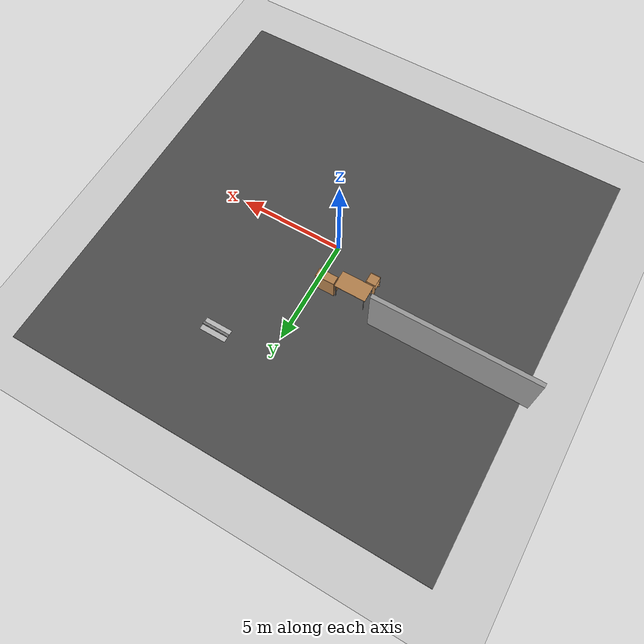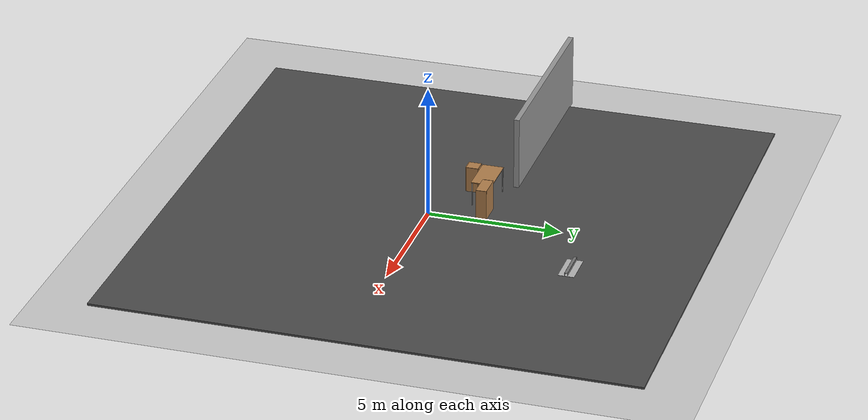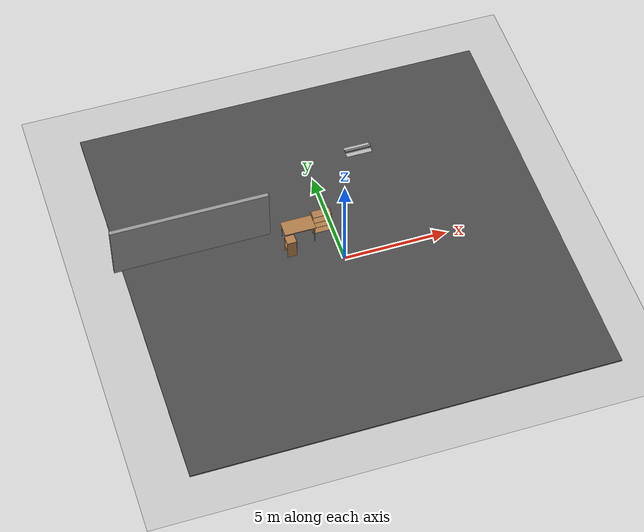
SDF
<sdf version="1.6">
 <world name="default">
  <model name="ground_plane">
   <static>1</static>
   <link name="link">
    <collision name="collision">
     <geometry><plane><normal>0 0 1</normal><size>100 100</size></plane></geometry>
     <surface>
      <contact><collide_bitmask>65535</collide_bitmask></contact>
      <friction><ode><mu>100</mu><mu2>50</mu2></ode></friction>
     </surface>
    </collision>
    <visual name="visual">
     <cast_shadows>0</cast_shadows>
     <geometry><plane><normal>0 0 1</normal><size>100 100</size></plane></geometry>
     <material>
      <script><uri>file://media/materials/scripts/gazebo.material</uri><name>Gazebo/Grey</name></script>
     </material>
    </visual>
   </link>
  </model>
  <model name="table">
   <static>1</static>
   <link name="link">
    <collision name="surface">
     <pose>0 0 1 0 -0 0</pose>
     <geometry><box><size>1.5 0.8 0.03</size></box></geometry>
     <surface><friction><ode><mu>0.6</mu><mu2>0.6</mu2></ode></friction></surface>
    </collision>
    <visual name="visual1">
     <pose>0 0 1 0 -0 0</pose>
     <geometry><box><size>1.5 0.8 0.03</size></box></geometry>
     <material>
      <script><uri>file://media/materials/scripts/gazebo.material</uri><name>Gazebo/Wood</name></script>
     </material>
    </visual>
    <collision name="front_left_leg">
     <pose>0.68 0.38 0.5 0 -0 0</pose>
     <geometry><cylinder><radius>0.02</radius><length>1</length></cylinder></geometry>
    </collision>
    <visual name="front_left_leg">
     <pose>0.68 0.38 0.5 0 -0 0</pose>
     <geometry><cylinder><radius>0.02</radius><length>1</length></cylinder></geometry>
     <material>
      <script><uri>file://media/materials/scripts/gazebo.material</uri><name>Gazebo/Grey</name></script>
     </material>
    </visual>
    <collision name="front_right_leg">
     <pose>0.68 -0.38 0.5 0 -0 0</pose>
     <geometry><cylinder><radius>0.02</radius><length>1</length></cylinder></geometry>
    </collision>
    <visual name="front_right_leg">
     <pose>0.68 -0.38 0.5 0 -0 0</pose>
     <geometry><cylinder><radius>0.02</radius><length>1</length></cylinder></geometry>
     <material>
      <script><uri>file://media/materials/scripts/gazebo.material</uri><name>Gazebo/Grey</name></script>
     </material>
    </visual>
    <collision name="back_right_leg">
     <pose>-0.68 -0.38 0.5 0 -0 0</pose>
     <geometry><cylinder><radius>0.02</radius><length>1</length></cylinder></geometry>
    </collision>
    <visual name="back_right_leg">
     <pose>-0.68 -0.38 0.5 0 -0 0</pose>
     <geometry><cylinder><radius>0.02</radius><length>1</length></cylinder></geometry>
     <material>
      <script><uri>file://media/materials/scripts/gazebo.material</uri><name>Gazebo/Grey</name></script>
     </material>
    </visual>
    <collision name="back_left_leg">
     <pose>-0.68 0.38 0.5 0 -0 0</pose>
     <geometry><cylinder><radius>0.02</radius><length>1</length></cylinder></geometry>
    </collision>
    <visual name="back_left_leg">
     <pose>-0.68 0.38 0.5 0 -0 0</pose>
     <geometry><cylinder><radius>0.02</radius><length>1</length></cylinder></geometry>
     <material>
      <script><uri>file://media/materials/scripts/gazebo.material</uri><name>Gazebo/Grey</name></script>
     </material>
    </visual>
   </link>
   <pose>-1.7186 1.73602 0 0 -0 0</pose>
  </model>
  <model name="asphalt_plane">
   <static>1</static>
   <link name="link">
    <collision name="collision"><geometry><box><size>20 20 0.1</size></box></geometry></collision>
    <visual name="visual">
     <cast_shadows>0</cast_shadows>
     <geometry><box><size>20 20 0.1</size></box></geometry>
     <material>
      <script>
       <uri>model://asphalt_plane/materials/scripts</uri>
       <uri>model://asphalt_plane/materials/textures</uri>
       <name>vrc/asphalt</name>
      </script>
     </material>
    </visual>
   </link>
   <pose>-0.009783 0.654292 0 0 -0 0</pose>
  </model>
  <model name="bookshelf">
   <static>1</static>
   <link name="link">
    <inertial><mass>1</mass></inertial>
    <collision name="back">
     <pose>0 0.005 0.6 0 -0 0</pose>
     <geometry><box><size>0.9 0.01 1.2</size></box></geometry>
    </collision>
    <visual name="visual1">
     <pose>0 0.005 0.6 0 -0 0</pose>
     <geometry><box><size>0.9 0.01 1.2</size></box></geometry>
     <material>
      <script><uri>file://media/materials/scripts/gazebo.material</uri><name>Gazebo/Wood</name></script>
     </material>
    </visual>
    <collision name="left_side">
     <pose>0.45 -0.195 0.6 0 -0 0</pose>
     <geometry><box><size>0.02 0.4 1.2</size></box></geometry>
    </collision>
    <visual name="visual2">
     <pose>0.45 -0.195 0.6 0 -0 0</pose>
     <geometry><box><size>0.02 0.4 1.2</size></box></geometry>
     <material>
      <script><uri>file://media/materials/scripts/gazebo.material</uri><name>Gazebo/Wood</name></script>
     </material>
    </visual>
    <collision name="right_side">
     <pose>-0.45 -0.195 0.6 0 -0 0</pose>
     <geometry><box><size>0.02 0.4 1.2</size></box></geometry>
    </collision>
    <visual name="visual3">
     <pose>-0.45 -0.195 0.6 0 -0 0</pose>
     <geometry><box><size>0.02 0.4 1.2</size></box></geometry>
     <material>
      <script><uri>file://media/materials/scripts/gazebo.material</uri><name>Gazebo/Wood</name></script>
     </material>
    </visual>
    <collision name="bottom">
     <pose>0 -0.195 0.03 0 -0 0</pose>
     <geometry><box><size>0.88 0.4 0.06</size></box></geometry>
    </collision>
    <visual name="visual4">
     <pose>0 -0.195 0.03 0 -0 0</pose>
     <geometry><box><size>0.88 0.4 0.06</size></box></geometry>
     <material>
      <script><uri>file://media/materials/scripts/gazebo.material</uri><name>Gazebo/Wood</name></script>
     </material>
    </visual>
    <collision name="top">
     <pose>0 -0.195 1.19 0 -0 0</pose>
     <geometry><box><size>0.88 0.4 0.02</size></box></geometry>
    </collision>
    <visual name="visual5">
     <pose>0 -0.195 1.19 0 -0 0</pose>
     <geometry><box><size>0.88 0.4 0.02</size></box></geometry>
     <material>
      <script><uri>file://media/materials/scripts/gazebo.material</uri><name>Gazebo/Wood</name></script>
     </material>
    </visual>
    <collision name="low_shelf">
     <pose>0 -0.195 0.43 0 -0 0</pose>
     <geometry><box><size>0.88 0.4 0.02</size></box></geometry>
    </collision>
    <visual name="visual6">
     <pose>0 -0.195 0.43 0 -0 0</pose>
     <geometry><box><size>0.88 0.4 0.02</size></box></geometry>
     <material>
      <script><uri>file://media/materials/scripts/gazebo.material</uri><name>Gazebo/Wood</name></script>
     </material>
    </visual>
    <collision name="high_shelf">
     <pose>0 -0.195 0.8 0 -0 0</pose>
     <geometry><box><size>0.88 0.4 0.02</size></box></geometry>
    </collision>
    <visual name="visual7">
     <pose>0 -0.195 0.8 0 -0 0</pose>
     <geometry><box><size>0.88 0.4 0.02</size></box></geometry>
     <material>
      <script><uri>file://media/materials/scripts/gazebo.material</uri><name>Gazebo/Wood</name></script>
     </material>
    </visual>
   </link>
   <pose>-0.520851 2.1736 0 0 -0 0</pose>
  </model>
  <model name="grey_wall">
   <static>1</static>
   <link name="link">
    <pose>0 0 1.4 0 -0 0</pose>
    <collision name="collision"><geometry><box><size>7.5 0.2 2.8</size></box></geometry></collision>
    <visual name="visual">
     <cast_shadows>0</cast_shadows>
     <geometry><box><size>7.5 0.2 2.8</size></box></geometry>
     <material>
      <script>
       <uri>model://grey_wall/materials/scripts</uri>
       <uri>model://grey_wall/materials/textures</uri>
       <name>vrc/grey_wall</name>
      </script>
     </material>
    </visual>
   </link>
   <pose>-6.62884 2.50048 0 0 -0 0</pose>
  </model>
  <model name="frc2016_rockwall">
   <static>1</static>
   <link name="link">
    <inertial>
     <mass>10</mass>
     <pose>0 0 0.08974 0 -0 0</pose>
     <inertia><ixx>0.327091</ixx><ixy>0</ixy><ixz>0</ixz><iyy>1.37417</iyy><iyz>0</iyz><izz>1.64109</izz></inertia>
    </inertial>
    <visual name="platform">
     <pose>0 0 0.06432 0 -0 0</pose>
     <geometry><box><size>1.27 0.5969 0.003175</size></box></geometry>
    </visual>
    <collision name="platform">
     <pose>0 0 0.06432 0 -0 0</pose>
     <geometry><box><size>1.27 0.5969 0.003175</size></box></geometry>
    </collision>
    <visual name="up1">
     <pose>0 0.05166 0.12537 0 -0 0</pose>
     <geometry><box><size>1.27 0.00462 0.11892</size></box></geometry>
     <material><ambient>0.46 0.46 0.46 1</ambient><diffuse>0.46 0.46 0.46 1</diffuse></material>
    </visual>
    <collision name="up1">
     <pose>0 0.05166 0.12537 0 -0 0</pose>
     <geometry><box><size>1.27 0.00462 0.11892</size></box></geometry>
    </collision>
    <visual name="up2">
     <pose>0 -0.05801 0.12537 0 -0 0</pose>
     <geometry><box><size>1.27 0.00462 0.11892</size></box></geometry>
     <material><ambient>0.46 0.46 0.46 1</ambient><diffuse>0.46 0.46 0.46 1</diffuse></material>
    </visual>
    <collision name="up2">
     <pose>0 -0.05801 0.12537 0 -0 0</pose>
     <geometry><box><size>1.27 0.00462 0.11892</size></box></geometry>
    </collision>
    <visual name="top">
     <pose>0 -0.00249 0.18252 0 -0 0</pose>
     <geometry><box><size>1.27 0.1143 0.00462</size></box></geometry>
     <material><ambient>0.46 0.46 0.46 1</ambient><diffuse>0.46 0.46 0.46 1</diffuse></material>
    </visual>
    <collision name="top">
     <pose>0 -0.00249 0.18252 0 -0 0</pose>
     <geometry><box><size>1.27 0.1143 0.00462</size></box></geometry>
    </collision>
   </link>
   <pose>2.61671 6.08473 0 0 -0 0</pose>
  </model>
  <model name="cabinet">
   <static>1</static>
   <link name="cabinet_bottom_plate">
    <inertial>
     <pose>0 0 -1 0 -0 0</pose>
     <inertia><ixx>2.05</ixx><ixy>0</ixy><ixz>0</ixz><iyy>2.05</iyy><iyz>0</iyz><izz>2.05</izz></inertia>
     <mass>25</mass>
    </inertial>
    <collision name="cabinet_bottom_plate_geom">
     <pose>0 0 0.01 0 -0 0</pose>
     <geometry><box><size>0.45 0.45 0.02</size></box></geometry>
    </collision>
    <visual name="cabinet_bottom_plate_geom_visual">
     <pose>0 0 0.01 0 -0 0</pose>
     <geometry><box><size>0.45 0.45 0.02</size></box></geometry>
     <material>
      <script><uri>file://media/materials/scripts/gazebo.material</uri><name>Gazebo/Wood</name></script>
     </material>
    </visual>
    <collision name="cabinet_bottom_plate_geom_cabinet_back_plate">
     <pose>0.235 0 0.51 0 -0 0</pose>
     <geometry><box><size>0.02 0.45 1.02</size></box></geometry>
    </collision>
    <visual name="cabinet_bottom_plate_geom_cabinet_back_plate_visual">
     <pose>0.235 0 0.51 0 -0 0</pose>
     <geometry><box><size>0.02 0.45 1.02</size></box></geometry>
     <material>
      <script><uri>file://media/materials/scripts/gazebo.material</uri><name>Gazebo/Wood</name></script>
     </material>
    </visual>
    <collision name="cabinet_bottom_plate_geom_cabinet_left_plate">
     <pose>0 0.235 0.51 0 -0 0</pose>
     <geometry><box><size>0.45 0.02 1.02</size></box></geometry>
    </collision>
    <visual name="cabinet_bottom_plate_geom_cabinet_left_plate_visual">
     <pose>0 0.235 0.51 0 -0 0</pose>
     <geometry><box><size>0.45 0.02 1.02</size></box></geometry>
     <material>
      <script><uri>file://media/materials/scripts/gazebo.material</uri><name>Gazebo/Wood</name></script>
     </material>
    </visual>
    <collision name="cabinet_bottom_plate_geom_cabinet_middle_plate">
     <pose>0 0 0.51 0 -0 0</pose>
     <geometry><box><size>0.45 0.45 0.02</size></box></geometry>
    </collision>
    <visual name="cabinet_bottom_plate_geom_cabinet_middle_plate_visual">
     <pose>0 0 0.51 0 -0 0</pose>
     <geometry><box><size>0.45 0.45 0.02</size></box></geometry>
     <material>
      <script><uri>file://media/materials/scripts/gazebo.material</uri><name>Gazebo/Wood</name></script>
     </material>
    </visual>
    <collision name="cabinet_bottom_plate_geom_cabinet_right_plate">
     <pose>0 -0.235 0.51 0 -0 0</pose>
     <geometry><box><size>0.45 0.02 1.02</size></box></geometry>
    </collision>
    <visual name="cabinet_bottom_plate_geom_cabinet_right_plate_visual">
     <pose>0 -0.235 0.51 0 -0 0</pose>
     <geometry><box><size>0.45 0.02 1.02</size></box></geometry>
     <material>
      <script><uri>file://media/materials/scripts/gazebo.material</uri><name>Gazebo/Wood</name></script>
     </material>
    </visual>
    <collision name="cabinet_bottom_plate_geom_cabinet_top_plate">
     <pose>0 0 1.01 0 -0 0</pose>
     <geometry><box><size>0.45 0.45 0.02</size></box></geometry>
    </collision>
    <visual name="cabinet_bottom_plate_geom_cabinet_top_plate_visual">
     <pose>0 0 1.01 0 -0 0</pose>
     <geometry><box><size>0.45 0.45 0.02</size></box></geometry>
     <material>
      <script><uri>file://media/materials/scripts/gazebo.material</uri><name>Gazebo/Wood</name></script>
     </material>
    </visual>
   </link>
   <pose>-2.29451 1.04444 0 0 -0 0</pose>
  </model>
 </world>
</sdf>
